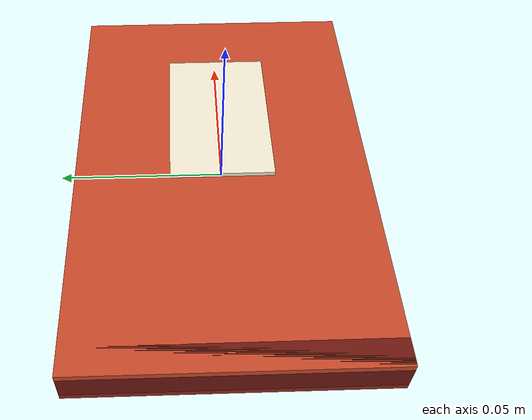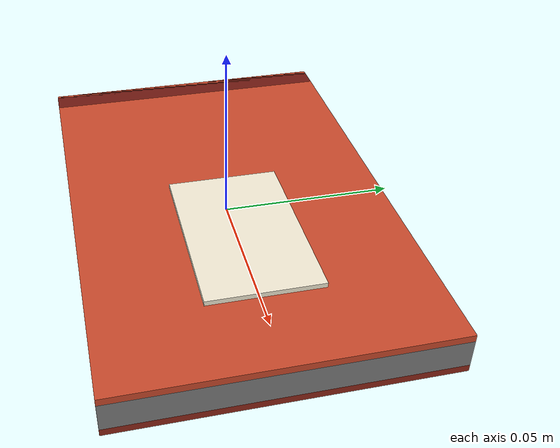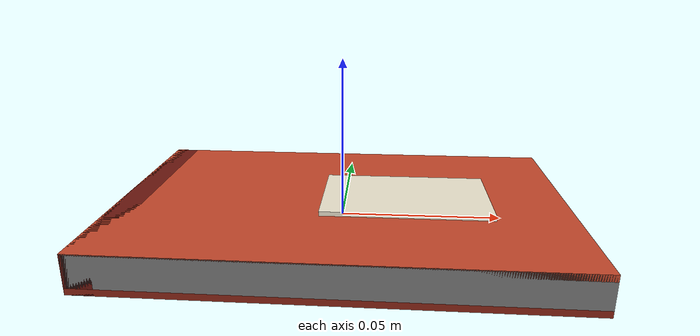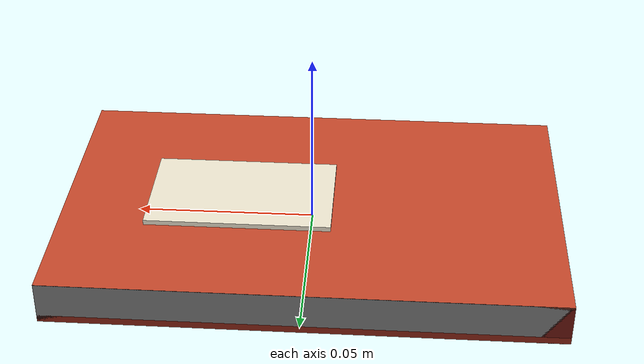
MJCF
<mujoco model="vla82_vla82_048__aux_02">
  <compiler angle="radian"/>
  <asset>
    <texture name="source_texture" type="2d" file="source_texture.png"/>
    <material name="source_material" texture="source_texture" rgba="1 1 1 1"/>
  </asset>
  <default>
    <default class="visual"><geom contype="0" conaffinity="0" group="1"/></default>
    <default class="collision"><geom contype="1" conaffinity="1" group="0" density="300" friction="0.65 0.006 0.0002" solref="0.02 1" solimp="0.9 0.95 0.001"/></default>
    <default class="region"><geom contype="0" conaffinity="0" group="1" rgba="0 1 0 0" mass="0"/></default>
  </default>
  <worldbody><body><body name="object">
    <geom name="target_folder_pages" class="visual" type="box" pos="0.003 0 0" size="0.064000 0.042000 0.004000" rgba="0.95 0.91 0.82 1"/>
    <geom name="target_folder_cover" class="visual" type="box" pos="0 0 0.005000" size="0.070000 0.045000 0.001" rgba="0.82 0.30 0.18 1"/>
    <geom name="target_folder_bottom" class="visual" type="box" pos="0 0 -0.005000" size="0.070000 0.045000 0.001" rgba="0.58 0.16 0.10 1"/>
    <geom name="target_folder_spine" class="visual" type="box" pos="-0.066000 0 0" size="0.004 0.045000 0.006000" rgba="0.45 0.10 0.07 1"/>
    <geom name="target_folder_label" class="visual" type="box" pos="0.020 0 0.006700" size="0.026 0.016 0.0007" rgba="0.98 0.95 0.86 1"/>
    <geom name="collision" class="collision" type="box" size="0.070000 0.045000 0.006000"/>
    <geom name="reg_bbox" class="region" type="box" pos="0 0 0" size="0.070000 0.045000 0.006000"/>
  </body></body></worldbody>
  <actuator/>
</mujoco>
